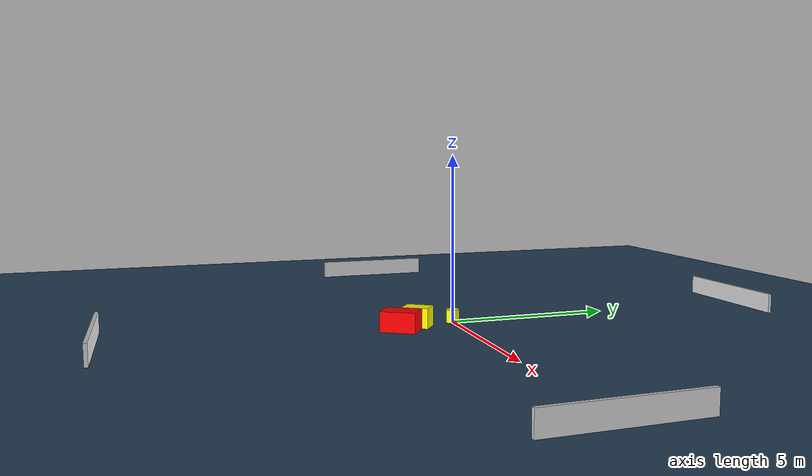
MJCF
<?xml version="1.0" ?>
<mujoco model="generated_environment">
  <option timestep="0.01" integrator="RK4" cone="elliptic"/>
  <default>
    <geom density="1"/>
  </default>
  <asset>
    <texture builtin="gradient" height="3072" name="skybox" rgb1="0.3 0.5 0.7" rgb2="0 0 0" type="skybox" width="512"/>
    <texture builtin="checker" height="300" name="groundplane" rgb1="0.2 0.3 0.4" rgb2="0.1 0.2 0.3" type="2d" width="300"/>
    <material name="groundplane" reflectance="0.2" texrepeat="5 5" texture="groundplane"/>
  </asset>
  <worldbody>
    <light dir="0 0 -1" directional="true" pos="0 0 1.5"/>
    <geom condim="3" friction="0.5 0.005 0.001" material="groundplane" name="floor" pos="0 0 0" size="0 0 0.05" type="plane"/>
    <body name="walls">
      <geom name="wall_1" condim="4" pos="-10.0 0.0 0.3" rgba="0.800000011920929 0.800000011920929 0.800000011920929 1.0" size="0.05 2.0 0.3" type="box"/>
      <geom name="wall_2" condim="4" pos="10.0 0.0 0.3" rgba="0.800000011920929 0.800000011920929 0.800000011920929 1.0" size="0.05 2.0 0.3" type="box"/>
      <geom name="wall_3" condim="4" pos="0.0 -10.0 0.3" rgba="0.800000011920929 0.800000011920929 0.800000011920929 1.0" size="2.0 0.05 0.3" type="box"/>
      <geom name="wall_4" condim="4" pos="0.0 10.0 0.3" rgba="0.800000011920929 0.800000011920929 0.800000011920929 1.0" size="2.0 0.05 0.3" type="box"/>
    </body>
    <body name="robot">
      <joint name="joint_x" type="slide" pos="0 0 0" axis="1 0 0"/>
      <joint name="joint_y" type="slide" pos="0 0 0" axis="0 1 0"/>
      <geom name="robot" type="cylinder" pos="0.0 0.0 0.2" size="0.2 0.2 0.0" mass="5.0" friction="1.0 0.005 0.0001" condim="4" rgba="1.0 1.0 0.0 1.0"/>
    </body>
    <body name="obstacle_1_movable">
      <geom name="obstacle_1_movable" condim="4" pos="0.22685232624591065 -1.1773259803083584 0.3" euler="0 0 235.4660273256384" friction="0.0 0.005 0.001" rgba="1.0 1.0 0.0 1.0" size="0.39916004696030427 0.28792368816667885 0.3" type="box" mass="0.1"/>
      <joint type="free"/>
    </body>
    <body name="obstacle_2_static">
      <geom name="obstacle_2_static" condim="4" pos="0.6163803126144651 -1.7964207087692088 0.3" euler="0 0 327.2159506178483" friction="0.0 0.005 0.001" rgba="1.0 0.0 0.0 1.0" size="0.3484752380949303 0.5302789328067266 0.3" type="box"/>
    </body>
  </worldbody>
  <actuator>
    <motor name="actuator_x" joint="joint_x" gear="1" ctrlrange="-1 1"/>
    <motor name="actuator_y" joint="joint_y" gear="1" ctrlrange="-1 1"/>
  </actuator>
</mujoco>
